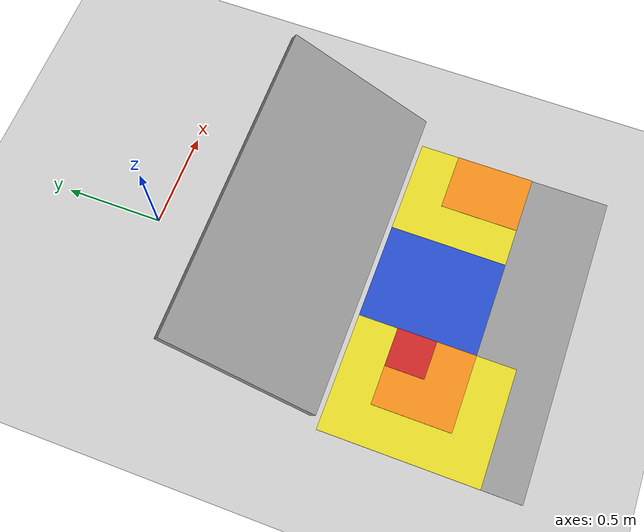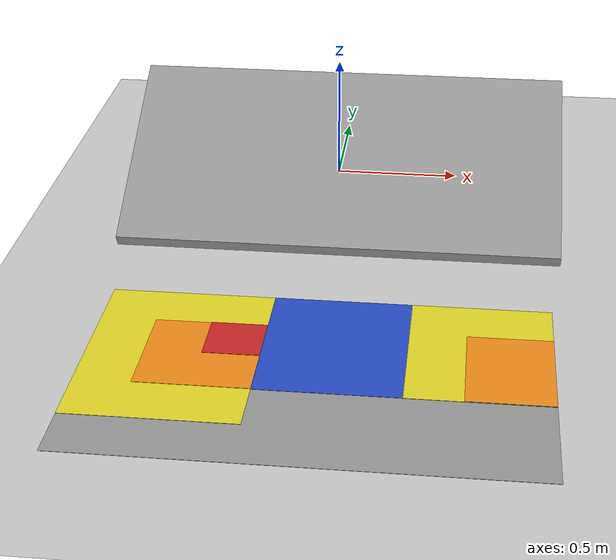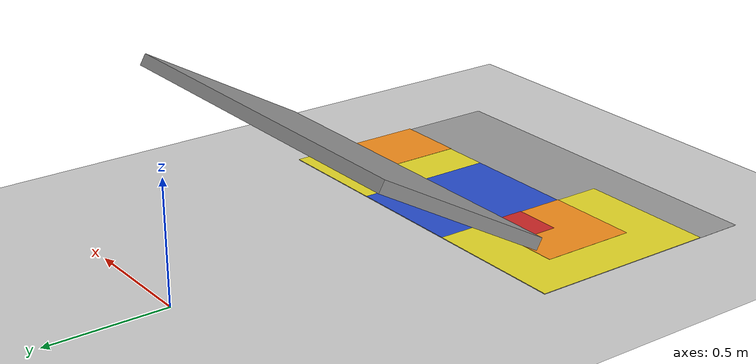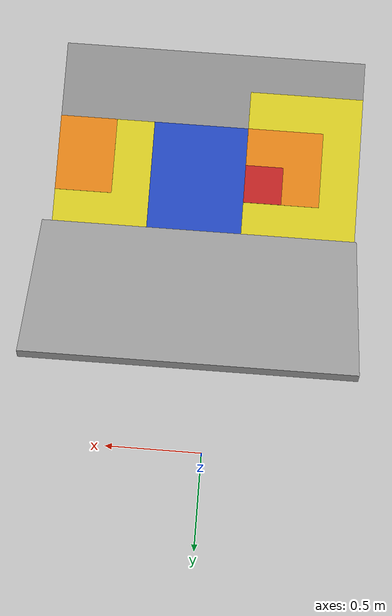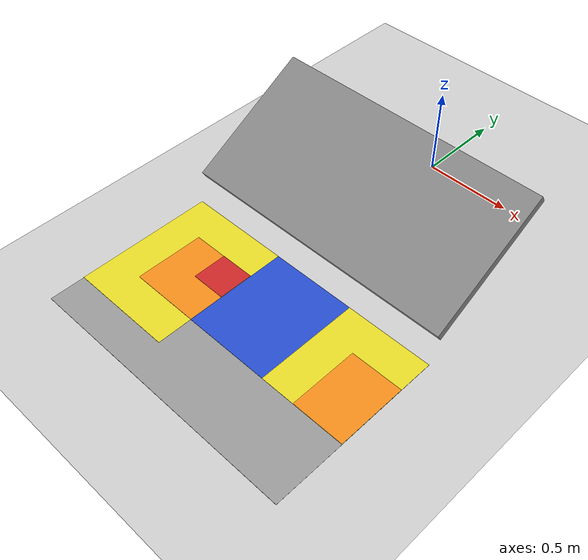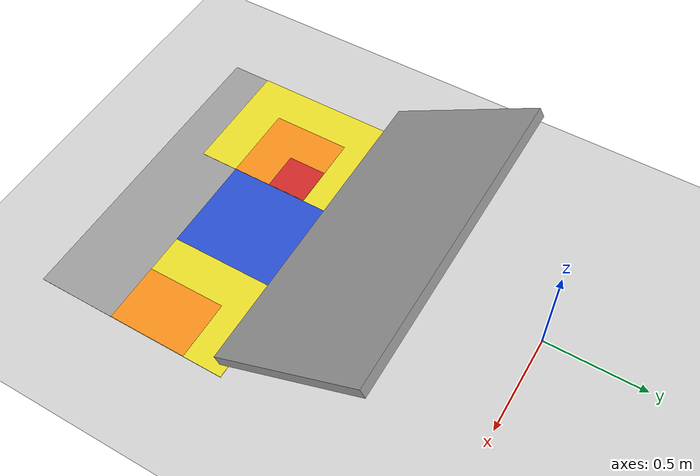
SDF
<sdf version="1.6">
 <world name="default">
  <light name="sun" type="directional">
   <pose>0 0 10 0 -0 0</pose>
   <diffuse>0.8 0.8 0.8 1</diffuse>
   <specular>0.1 0.1 0.1 1</specular>
   <attenuation>
    <range>1000</range>
    <constant>0.9</constant>
    <linear>0.01</linear>
    <quadratic>0.001</quadratic>
   </attenuation>
   <direction>-0.5 0.5 -1</direction>
  </light>
  <model name="ground_plane">
   <static>1</static>
   <link name="link">
    <collision name="collision">
     <geometry><plane><normal>0 0 1</normal><size>100 100</size></plane></geometry>
     <surface><friction><ode><mu>100</mu><mu2>50</mu2></ode></friction></surface>
    </collision>
    <visual name="visual">
     <cast_shadows>0</cast_shadows>
     <geometry><plane><normal>0 0 1</normal><size>100 100</size></plane></geometry>
     <material>
      <script><uri>file://media/materials/scripts/gazebo.material</uri><name>Gazebo/Grey</name></script>
     </material>
    </visual>
   </link>
  </model>
  <gravity>0 0 -9.8</gravity>
  <magnetic_field>6e-06 2.3e-05 -4.2e-05</magnetic_field>
  <atmosphere type="adiabatic"/>
  <physics name="default_physics" default="0" type="ode">
   <max_step_size>0.001</max_step_size>
   <real_time_factor>1</real_time_factor>
   <real_time_update_rate>1000</real_time_update_rate>
  </physics>
  <scene><ambient>0.4 0.4 0.4 1</ambient><background>0.7 0.7 0.7 1</background><shadows>1</shadows></scene>
  <spherical_coordinates>
   <surface_model>EARTH_WGS84</surface_model>
   <latitude_deg>0</latitude_deg>
   <longitude_deg>0</longitude_deg>
   <elevation>0</elevation>
   <heading_deg>0</heading_deg>
  </spherical_coordinates>
  <model name="inclined_wall_60deg_0_0">
   <link name="link_3">
    <pose>0.095196 -0.063979 1.5 -1.04667 -0 -0</pose>
    <inertial>
     <mass>0.432144</mass>
     <inertia>
      <ixx>0.104972</ixx>
      <ixy>0</ixy>
      <ixz>0</ixz>
      <iyy>0.594845</iyy>
      <iyz>0</iyz>
      <izz>0.490213</izz>
     </inertia>
    </inertial>
    <visual name="visual">
     <geometry><box><size>1.6 0.05 0.8</size></box></geometry>
     <material>
      <lighting>1</lighting>
      <script><uri>file://media/materials/scripts/gazebo.material</uri><name>Gazebo/Grey</name></script>
      <shader type="pixel"><normal_map>__default__</normal_map></shader>
      <ambient>0.3 0.3 0.3 1</ambient>
      <diffuse>0.7 0.7 0.7 1</diffuse>
      <specular>0.01 0.01 0.01 1</specular>
      <emissive>0 0 0 1</emissive>
     </material>
    </visual>
    <collision name="collision">
     <geometry><box><size>1.6 0.05 0.8</size></box></geometry>
     <surface>
      <friction>
       <ode><mu>1</mu><mu2>1</mu2><fdir1>0 0 0</fdir1><slip1>0</slip1><slip2>0</slip2></ode>
       <torsional>
        <coefficient>1</coefficient>
        <patch_radius>0</patch_radius>
        <surface_radius>0</surface_radius>
        <use_patch_radius>1</use_patch_radius>
        <ode><slip>0</slip></ode>
       </torsional>
      </friction>
      <bounce><restitution_coefficient>0</restitution_coefficient><threshold>1e+06</threshold></bounce>
      <contact>
       <collide_without_contact>0</collide_without_contact>
       <collide_without_contact_bitmask>1</collide_without_contact_bitmask>
       <collide_bitmask>1</collide_bitmask>
       <ode>
        <soft_cfm>0</soft_cfm>
        <soft_erp>0.2</soft_erp>
        <kp>1e+13</kp>
        <kd>1</kd>
        <max_vel>0.01</max_vel>
        <min_depth>0</min_depth>
       </ode>
       <bullet>
        <split_impulse>1</split_impulse>
        <split_impulse_penetration_threshold>-0.01</split_impulse_penetration_threshold>
        <soft_cfm>0</soft_cfm>
        <soft_erp>0.2</soft_erp>
        <kp>1e+13</kp>
        <kd>1</kd>
       </bullet>
      </contact>
     </surface>
    </collision>
   </link>
   <static>1</static>
   <pose>0 -0.7 -1.1 0 -0 0</pose>
  </model>
  <model name="score_mattress_0_0">
   <link name="link_0">
    <pose>-0.007143 -0.128571 0.002 0 -0 0</pose>
    <inertial>
     <mass>1</mass>
     <inertia>
      <ixx>0.166667</ixx>
      <ixy>0</ixy>
      <ixz>0</ixz>
      <iyy>0.166667</iyy>
      <iyz>0</iyz>
      <izz>0.166667</izz>
     </inertia>
    </inertial>
    <sensor name="contact1" type="contact">
     <always_on>1</always_on>
     <update_rate>10</update_rate>
     <contact><collision>collision</collision><topic>__default_topic__</topic></contact>
     <plugin name="bumper1" filename="libgazebo_ros_bumper.so">
      <alwaysOn>true</alwaysOn>
      <updateRate>0.0</updateRate>
      <bumperTopicName>/mattress/score0</bumperTopicName>
      <frameName>bumper1</frameName>
     </plugin>
    </sensor>
    <visual name="visual">
     <geometry><box><size>1.6 1 0.001</size></box></geometry>
     <material>
      <script><uri>file://media/materials/scripts/gazebo.material</uri><name>Gazebo/Grey</name></script>
      <ambient>0.3 0.3 0.3 1</ambient>
      <diffuse>0.7 0.7 0.7 1</diffuse>
      <specular>0.01 0.01 0.01 1</specular>
      <emissive>0 0 0 1</emissive>
      <shader type="vertex"><normal_map>__default__</normal_map></shader>
     </material>
    </visual>
    <collision name="collision">
     <geometry><box><size>1.6 1 0.001</size></box></geometry>
     <surface>
      <friction>
       <ode><mu>1</mu><mu2>1</mu2><fdir1>0 0 0</fdir1><slip1>0</slip1><slip2>0</slip2></ode>
       <torsional>
        <coefficient>1</coefficient>
        <patch_radius>0</patch_radius>
        <surface_radius>0</surface_radius>
        <use_patch_radius>1</use_patch_radius>
        <ode><slip>0</slip></ode>
       </torsional>
      </friction>
      <bounce><restitution_coefficient>0</restitution_coefficient><threshold>1e+06</threshold></bounce>
      <contact>
       <collide_without_contact>0</collide_without_contact>
       <collide_without_contact_bitmask>1</collide_without_contact_bitmask>
       <collide_bitmask>1</collide_bitmask>
       <ode>
        <soft_cfm>0</soft_cfm>
        <soft_erp>0.2</soft_erp>
        <kp>1e+13</kp>
        <kd>1</kd>
        <max_vel>0.01</max_vel>
        <min_depth>0</min_depth>
       </ode>
       <bullet>
        <split_impulse>1</split_impulse>
        <split_impulse_penetration_threshold>-0.01</split_impulse_penetration_threshold>
        <soft_cfm>0</soft_cfm>
        <soft_erp>0.2</soft_erp>
        <kp>1e+13</kp>
        <kd>1</kd>
       </bullet>
      </contact>
     </surface>
    </collision>
   </link>
   <link name="link_0_clone">
    <pose>0.542857 0.071429 0.004 0 -0 0</pose>
    <inertial>
     <mass>1</mass>
     <inertia>
      <ixx>0.166667</ixx>
      <ixy>0</ixy>
      <ixz>0</ixz>
      <iyy>0.166667</iyy>
      <iyz>0</iyz>
      <izz>0.166667</izz>
     </inertia>
    </inertial>
    <sensor name="contact2" type="contact">
     <always_on>1</always_on>
     <update_rate>10</update_rate>
     <contact><collision>collision</collision><topic>__default_topic__</topic></contact>
     <plugin name="bumper2" filename="libgazebo_ros_bumper.so">
      <alwaysOn>true</alwaysOn>
      <updateRate>0.0</updateRate>
      <bumperTopicName>/mattress/score5</bumperTopicName>
      <frameName>bumper2</frameName>
     </plugin>
    </sensor>
    <visual name="visual">
     <geometry><box><size>0.5 0.6 0.001</size></box></geometry>
     <material>
      <script><uri>file://media/materials/scripts/gazebo.material</uri><name>Gazebo/Yellow</name></script>
      <ambient>1 1 0 1</ambient>
      <diffuse>1 1 0 1</diffuse>
      <specular>0 0 0 0</specular>
      <emissive>0 0 0 1</emissive>
      <shader type="vertex"><normal_map>__default__</normal_map></shader>
     </material>
    </visual>
    <collision name="collision">
     <geometry><box><size>0.5 0.6 0.001</size></box></geometry>
     <surface>
      <friction>
       <ode><mu>1</mu><mu2>1</mu2><fdir1>0 0 0</fdir1><slip1>0</slip1><slip2>0</slip2></ode>
       <torsional>
        <coefficient>1</coefficient>
        <patch_radius>0</patch_radius>
        <surface_radius>0</surface_radius>
        <use_patch_radius>1</use_patch_radius>
        <ode><slip>0</slip></ode>
       </torsional>
      </friction>
      <bounce><restitution_coefficient>0</restitution_coefficient><threshold>1e+06</threshold></bounce>
      <contact>
       <collide_without_contact>0</collide_without_contact>
       <collide_without_contact_bitmask>1</collide_without_contact_bitmask>
       <collide_bitmask>1</collide_bitmask>
       <ode>
        <soft_cfm>0</soft_cfm>
        <soft_erp>0.2</soft_erp>
        <kp>1e+13</kp>
        <kd>1</kd>
        <max_vel>0.01</max_vel>
        <min_depth>0</min_depth>
       </ode>
       <bullet>
        <split_impulse>1</split_impulse>
        <split_impulse_penetration_threshold>-0.01</split_impulse_penetration_threshold>
        <soft_cfm>0</soft_cfm>
        <soft_erp>0.2</soft_erp>
        <kp>1e+13</kp>
        <kd>1</kd>
       </bullet>
      </contact>
     </surface>
    </collision>
   </link>
   <link name="link_0_clone_clone">
    <pose>-0.507143 -0.028571 0.004 0 -0 0</pose>
    <inertial>
     <mass>1</mass>
     <inertia>
      <ixx>0.166667</ixx>
      <ixy>0</ixy>
      <ixz>0</ixz>
      <iyy>0.166667</iyy>
      <iyz>0</iyz>
      <izz>0.166667</izz>
     </inertia>
    </inertial>
    <sensor name="contact3" type="contact">
     <always_on>1</always_on>
     <update_rate>10</update_rate>
     <contact><collision>collision</collision><topic>__default_topic__</topic></contact>
     <plugin name="bumper3" filename="libgazebo_ros_bumper.so">
      <alwaysOn>true</alwaysOn>
      <updateRate>0.0</updateRate>
      <bumperTopicName>/mattress/score5</bumperTopicName>
      <frameName>bumper3</frameName>
     </plugin>
    </sensor>
    <visual name="visual">
     <geometry><box><size>0.6 0.8 0.001</size></box></geometry>
     <material>
      <script><uri>file://media/materials/scripts/gazebo.material</uri><name>Gazebo/Yellow</name></script>
      <ambient>1 1 0 1</ambient>
      <diffuse>1 1 0 1</diffuse>
      <specular>0 0 0 0</specular>
      <emissive>0 0 0 1</emissive>
      <shader type="vertex"><normal_map>__default__</normal_map></shader>
     </material>
    </visual>
    <collision name="collision">
     <geometry><box><size>0.6 0.8 0.001</size></box></geometry>
     <surface>
      <friction>
       <ode><mu>1</mu><mu2>1</mu2><fdir1>0 0 0</fdir1><slip1>0</slip1><slip2>0</slip2></ode>
       <torsional>
        <coefficient>1</coefficient>
        <patch_radius>0</patch_radius>
        <surface_radius>0</surface_radius>
        <use_patch_radius>1</use_patch_radius>
        <ode><slip>0</slip></ode>
       </torsional>
      </friction>
      <bounce><restitution_coefficient>0</restitution_coefficient><threshold>1e+06</threshold></bounce>
      <contact>
       <collide_without_contact>0</collide_without_contact>
       <collide_without_contact_bitmask>1</collide_without_contact_bitmask>
       <collide_bitmask>1</collide_bitmask>
       <ode>
        <soft_cfm>0</soft_cfm>
        <soft_erp>0.2</soft_erp>
        <kp>1e+13</kp>
        <kd>1</kd>
        <max_vel>0.01</max_vel>
        <min_depth>0</min_depth>
       </ode>
       <bullet>
        <split_impulse>1</split_impulse>
        <split_impulse_penetration_threshold>-0.01</split_impulse_penetration_threshold>
        <soft_cfm>0</soft_cfm>
        <soft_erp>0.2</soft_erp>
        <kp>1e+13</kp>
        <kd>1</kd>
       </bullet>
      </contact>
     </surface>
    </collision>
   </link>
   <link name="link_0_clone_clone_0">
    <pose>0.042857 0.071429 0.004 0 -0 0</pose>
    <inertial>
     <mass>1</mass>
     <inertia>
      <ixx>0.166667</ixx>
      <ixy>0</ixy>
      <ixz>0</ixz>
      <iyy>0.166667</iyy>
      <iyz>0</iyz>
      <izz>0.166667</izz>
     </inertia>
    </inertial>
    <sensor name="contact4" type="contact">
     <always_on>1</always_on>
     <update_rate>10</update_rate>
     <contact><collision>collision</collision><topic>__default_topic__</topic></contact>
     <plugin name="bumper4" filename="libgazebo_ros_bumper.so">
      <alwaysOn>true</alwaysOn>
      <updateRate>0.0</updateRate>
      <bumperTopicName>/mattress/score_10</bumperTopicName>
      <frameName>bumper4</frameName>
     </plugin>
    </sensor>
    <visual name="visual">
     <geometry><box><size>0.5 0.6 0.001</size></box></geometry>
     <material>
      <script><uri>file://media/materials/scripts/gazebo.material</uri><name>Gazebo/Blue</name></script>
      <ambient>0 0 1 1</ambient>
      <diffuse>0 0 1 1</diffuse>
      <specular>0.1 0.1 0.1 1</specular>
      <emissive>0 0 0 1</emissive>
      <shader type="vertex"><normal_map>__default__</normal_map></shader>
     </material>
    </visual>
    <collision name="collision">
     <geometry><box><size>0.5 0.6 0.001</size></box></geometry>
     <surface>
      <friction>
       <ode><mu>1</mu><mu2>1</mu2><fdir1>0 0 0</fdir1><slip1>0</slip1><slip2>0</slip2></ode>
       <torsional>
        <coefficient>1</coefficient>
        <patch_radius>0</patch_radius>
        <surface_radius>0</surface_radius>
        <use_patch_radius>1</use_patch_radius>
        <ode><slip>0</slip></ode>
       </torsional>
      </friction>
      <bounce><restitution_coefficient>0</restitution_coefficient><threshold>1e+06</threshold></bounce>
      <contact>
       <collide_without_contact>0</collide_without_contact>
       <collide_without_contact_bitmask>1</collide_without_contact_bitmask>
       <collide_bitmask>1</collide_bitmask>
       <ode>
        <soft_cfm>0</soft_cfm>
        <soft_erp>0.2</soft_erp>
        <kp>1e+13</kp>
        <kd>1</kd>
        <max_vel>0.01</max_vel>
        <min_depth>0</min_depth>
       </ode>
       <bullet>
        <split_impulse>1</split_impulse>
        <split_impulse_penetration_threshold>-0.01</split_impulse_penetration_threshold>
        <soft_cfm>0</soft_cfm>
        <soft_erp>0.2</soft_erp>
        <kp>1e+13</kp>
        <kd>1</kd>
       </bullet>
      </contact>
     </surface>
    </collision>
   </link>
   <link name="link_0_clone_clone_1">
    <pose>0.642857 -0.028571 0.006 0 -0 0</pose>
    <inertial>
     <mass>1</mass>
     <inertia>
      <ixx>0.166667</ixx>
      <ixy>0</ixy>
      <ixz>0</ixz>
      <iyy>0.166667</iyy>
      <iyz>0</iyz>
      <izz>0.166667</izz>
     </inertia>
    </inertial>
    <sensor name="contact5" type="contact">
     <always_on>1</always_on>
     <update_rate>10</update_rate>
     <contact><collision>collision</collision><topic>__default_topic__</topic></contact>
     <plugin name="bumper5" filename="libgazebo_ros_bumper.so">
      <alwaysOn>true</alwaysOn>
      <updateRate>0.0</updateRate>
      <bumperTopicName>/mattress/score10</bumperTopicName>
      <frameName>bumper5</frameName>
     </plugin>
    </sensor>
    <visual name="visual">
     <geometry><box><size>0.3 0.4 0.001</size></box></geometry>
     <material>
      <script><uri>file://media/materials/scripts/gazebo.material</uri><name>Gazebo/Orange</name></script>
      <ambient>1 0.509 0.047 1</ambient>
      <diffuse>1 0.509 0.047 1</diffuse>
      <specular>0.5 0.5 0.5 1</specular>
      <emissive>0 0 0 1</emissive>
      <shader type="vertex"><normal_map>__default__</normal_map></shader>
     </material>
    </visual>
    <collision name="collision">
     <geometry><box><size>0.3 0.4 0.001</size></box></geometry>
     <surface>
      <friction>
       <ode><mu>1</mu><mu2>1</mu2><fdir1>0 0 0</fdir1><slip1>0</slip1><slip2>0</slip2></ode>
       <torsional>
        <coefficient>1</coefficient>
        <patch_radius>0</patch_radius>
        <surface_radius>0</surface_radius>
        <use_patch_radius>1</use_patch_radius>
        <ode><slip>0</slip></ode>
       </torsional>
      </friction>
      <bounce><restitution_coefficient>0</restitution_coefficient><threshold>1e+06</threshold></bounce>
      <contact>
       <collide_without_contact>0</collide_without_contact>
       <collide_without_contact_bitmask>1</collide_without_contact_bitmask>
       <collide_bitmask>1</collide_bitmask>
       <ode>
        <soft_cfm>0</soft_cfm>
        <soft_erp>0.2</soft_erp>
        <kp>1e+13</kp>
        <kd>1</kd>
        <max_vel>0.01</max_vel>
        <min_depth>0</min_depth>
       </ode>
       <bullet>
        <split_impulse>1</split_impulse>
        <split_impulse_penetration_threshold>-0.01</split_impulse_penetration_threshold>
        <soft_cfm>0</soft_cfm>
        <soft_erp>0.2</soft_erp>
        <kp>1e+13</kp>
        <kd>1</kd>
       </bullet>
      </contact>
     </surface>
    </collision>
   </link>
   <link name="link_0_clone_clone_1_clone">
    <pose>-0.407143 -0.028571 0.006 0 -0 0</pose>
    <inertial>
     <mass>1</mass>
     <inertia>
      <ixx>0.166667</ixx>
      <ixy>0</ixy>
      <ixz>0</ixz>
      <iyy>0.166667</iyy>
      <iyz>0</iyz>
      <izz>0.166667</izz>
     </inertia>
    </inertial>
    <sensor name="contact6" type="contact">
     <always_on>1</always_on>
     <update_rate>10</update_rate>
     <contact><collision>collision</collision><topic>__default_topic__</topic></contact>
     <plugin name="bumper6" filename="libgazebo_ros_bumper.so">
      <alwaysOn>true</alwaysOn>
      <updateRate>0.0</updateRate>
      <bumperTopicName>/mattress/score10</bumperTopicName>
      <frameName>bumper6</frameName>
     </plugin>
    </sensor>
    <visual name="visual">
     <geometry><box><size>0.4 0.4 0.001</size></box></geometry>
     <material>
      <script><uri>file://media/materials/scripts/gazebo.material</uri><name>Gazebo/Orange</name></script>
      <ambient>1 0.509 0.047 1</ambient>
      <diffuse>1 0.509 0.047 1</diffuse>
      <specular>0.5 0.5 0.5 1</specular>
      <emissive>0 0 0 1</emissive>
      <shader type="vertex"><normal_map>__default__</normal_map></shader>
     </material>
    </visual>
    <collision name="collision">
     <geometry><box><size>0.4 0.4 0.001</size></box></geometry>
     <surface>
      <friction>
       <ode><mu>1</mu><mu2>1</mu2><fdir1>0 0 0</fdir1><slip1>0</slip1><slip2>0</slip2></ode>
       <torsional>
        <coefficient>1</coefficient>
        <patch_radius>0</patch_radius>
        <surface_radius>0</surface_radius>
        <use_patch_radius>1</use_patch_radius>
        <ode><slip>0</slip></ode>
       </torsional>
      </friction>
      <bounce><restitution_coefficient>0</restitution_coefficient><threshold>1e+06</threshold></bounce>
      <contact>
       <collide_without_contact>0</collide_without_contact>
       <collide_without_contact_bitmask>1</collide_without_contact_bitmask>
       <collide_bitmask>1</collide_bitmask>
       <ode>
        <soft_cfm>0</soft_cfm>
        <soft_erp>0.2</soft_erp>
        <kp>1e+13</kp>
        <kd>1</kd>
        <max_vel>0.01</max_vel>
        <min_depth>0</min_depth>
       </ode>
       <bullet>
        <split_impulse>1</split_impulse>
        <split_impulse_penetration_threshold>-0.01</split_impulse_penetration_threshold>
        <soft_cfm>0</soft_cfm>
        <soft_erp>0.2</soft_erp>
        <kp>1e+13</kp>
        <kd>1</kd>
       </bullet>
      </contact>
     </surface>
    </collision>
   </link>
   <link name="link_0_clone_clone_1_clone_0">
    <pose>-0.307143 0.071429 0.008 0 -0 0</pose>
    <inertial>
     <mass>1</mass>
     <inertia>
      <ixx>0.166667</ixx>
      <ixy>0</ixy>
      <ixz>0</ixz>
      <iyy>0.166667</iyy>
      <iyz>0</iyz>
      <izz>0.166667</izz>
     </inertia>
    </inertial>
    <sensor name="contact7" type="contact">
     <always_on>1</always_on>
     <update_rate>10</update_rate>
     <contact><collision>collision</collision><topic>__default_topic__</topic></contact>
     <plugin name="bumper7" filename="libgazebo_ros_bumper.so">
      <alwaysOn>true</alwaysOn>
      <updateRate>0.0</updateRate>
      <bumperTopicName>/mattress/score100</bumperTopicName>
      <frameName>bumper7</frameName>
     </plugin>
    </sensor>
    <visual name="visual">
     <geometry><box><size>0.2 0.2 0.001</size></box></geometry>
     <material>
      <script><uri>file://media/materials/scripts/gazebo.material</uri><name>Gazebo/Red</name></script>
      <ambient>1 0 0 1</ambient>
      <diffuse>1 0 0 1</diffuse>
      <specular>0.1 0.1 0.1 1</specular>
      <emissive>0 0 0 1</emissive>
      <shader type="vertex"><normal_map>__default__</normal_map></shader>
     </material>
    </visual>
    <collision name="collision">
     <geometry><box><size>0.2 0.2 0.001</size></box></geometry>
     <surface>
      <friction>
       <ode><mu>1</mu><mu2>1</mu2><fdir1>0 0 0</fdir1><slip1>0</slip1><slip2>0</slip2></ode>
       <torsional>
        <coefficient>1</coefficient>
        <patch_radius>0</patch_radius>
        <surface_radius>0</surface_radius>
        <use_patch_radius>1</use_patch_radius>
        <ode><slip>0</slip></ode>
       </torsional>
      </friction>
      <bounce><restitution_coefficient>0</restitution_coefficient><threshold>1e+06</threshold></bounce>
      <contact>
       <collide_without_contact>0</collide_without_contact>
       <collide_without_contact_bitmask>1</collide_without_contact_bitmask>
       <collide_bitmask>1</collide_bitmask>
       <ode>
        <soft_cfm>0</soft_cfm>
        <soft_erp>0.2</soft_erp>
        <kp>1e+13</kp>
        <kd>1</kd>
        <max_vel>0.01</max_vel>
        <min_depth>0</min_depth>
       </ode>
       <bullet>
        <split_impulse>1</split_impulse>
        <split_impulse_penetration_threshold>-0.01</split_impulse_penetration_threshold>
        <soft_cfm>0</soft_cfm>
        <soft_erp>0.2</soft_erp>
        <kp>1e+13</kp>
        <kd>1</kd>
       </bullet>
      </contact>
     </surface>
    </collision>
   </link>
   <joint name="link_0_JOINT_0" type="fixed">
    <parent>link_0</parent>
    <child>link_0_clone</child>
    <physics>
     <ode><limit><cfm>0</cfm><erp>0.2</erp></limit><suspension><cfm>0</cfm><erp>0.2</erp></suspension></ode>
    </physics>
   </joint>
   <joint name="link_0_JOINT_1" type="fixed">
    <parent>link_0</parent>
    <child>link_0_clone_clone_0</child>
    <physics>
     <ode><limit><cfm>0</cfm><erp>0.2</erp></limit><suspension><cfm>0</cfm><erp>0.2</erp></suspension></ode>
    </physics>
   </joint>
   <joint name="link_0_JOINT_2" type="fixed">
    <parent>link_0</parent>
    <child>link_0_clone_clone</child>
    <physics>
     <ode><limit><cfm>0</cfm><erp>0.2</erp></limit><suspension><cfm>0</cfm><erp>0.2</erp></suspension></ode>
    </physics>
   </joint>
   <joint name="link_0_clone_JOINT_3" type="revolute">
    <parent>link_0_clone</parent>
    <child>link_0_clone_clone_1</child>
    <pose>0 0 0 0 -0.01 0</pose>
    <axis>
     <xyz>1 0 0</xyz>
     <use_parent_model_frame>0</use_parent_model_frame>
     <limit>
      <lower>-1.79769e+308</lower>
      <upper>1.79769e+308</upper>
      <effort>-1</effort>
      <velocity>-1</velocity>
     </limit>
     <dynamics>
      <spring_reference>0</spring_reference>
      <spring_stiffness>0</spring_stiffness>
      <damping>0</damping>
      <friction>0</friction>
     </dynamics>
    </axis>
    <physics>
     <ode><limit><cfm>0</cfm><erp>0.2</erp></limit><suspension><cfm>0</cfm><erp>0.2</erp></suspension></ode>
    </physics>
   </joint>
   <joint name="link_0_clone_clone_1_clone_JOINT_5" type="fixed">
    <parent>link_0_clone_clone_1_clone</parent>
    <child>link_0_clone_clone_1_clone_0</child>
    <physics>
     <ode><limit><cfm>0</cfm><erp>0.2</erp></limit><suspension><cfm>0</cfm><erp>0.2</erp></suspension></ode>
    </physics>
   </joint>
   <joint name="link_0_clone_clone_JOINT_4" type="fixed">
    <parent>link_0_clone_clone</parent>
    <child>link_0_clone_clone_1_clone</child>
    <physics>
     <ode><limit><cfm>0</cfm><erp>0.2</erp></limit><suspension><cfm>0</cfm><erp>0.2</erp></suspension></ode>
    </physics>
   </joint>
   <static>1</static>
   <pose>0.084795 -1.5 0 0 -0 0</pose>
  </model>
 </world>
</sdf>
